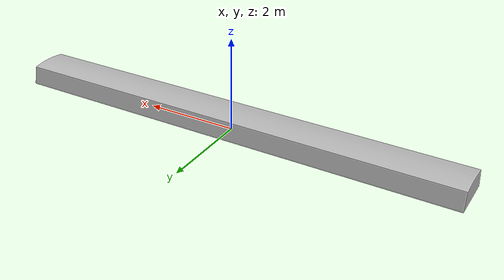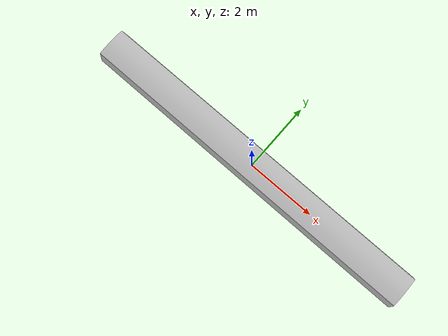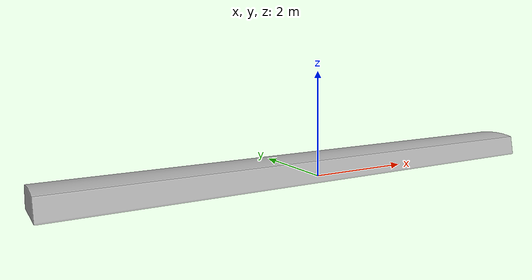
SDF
<?xml version="1.0"?>
<sdf version="1.6">
  <model name="bed">
    <static>true</static>
    <link name="link">
      <visual name="visual">
        <pose>0 0 0 1.5708 0 0</pose>
        <geometry><mesh><uri>model://bed/meshes/bed.obj</uri></mesh></geometry>
      </visual>
      <collision name="collision">
        <pose>0 0 0.20 0 0 0</pose>
        <geometry><box><size>10 1.0 0.4</size></box></geometry>
      </collision>
    </link>
  </model>
</sdf>
